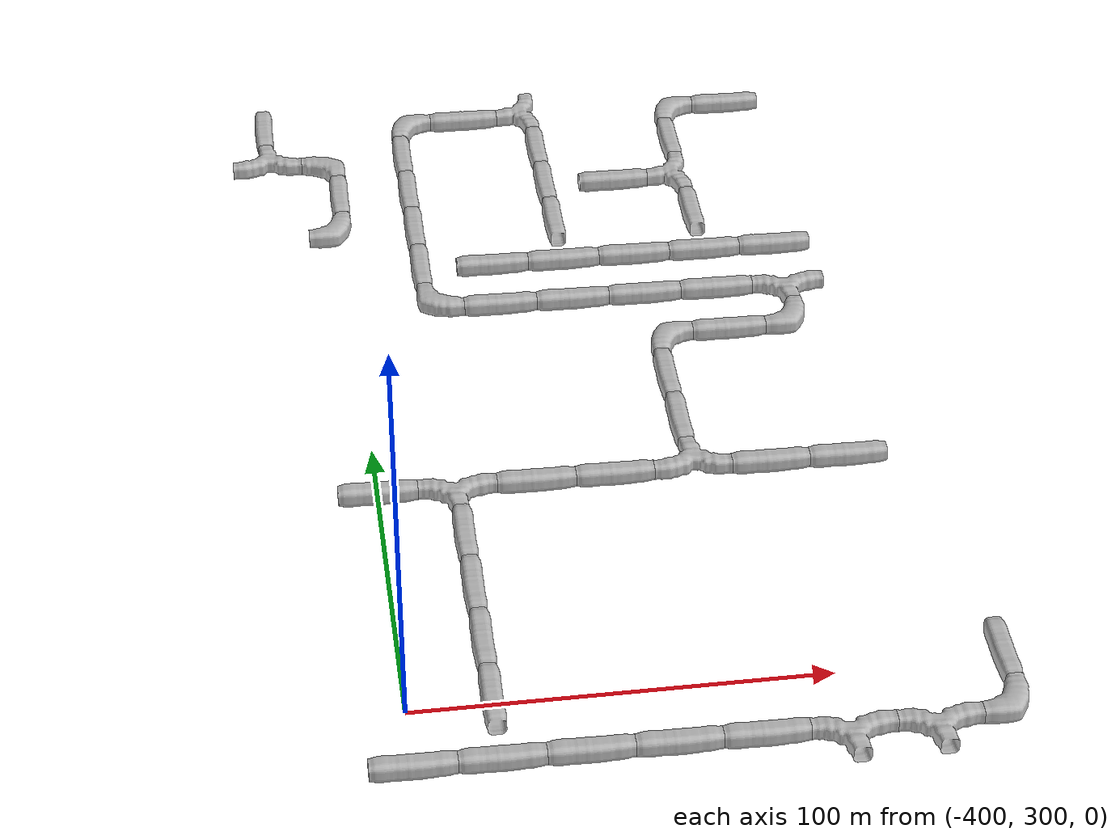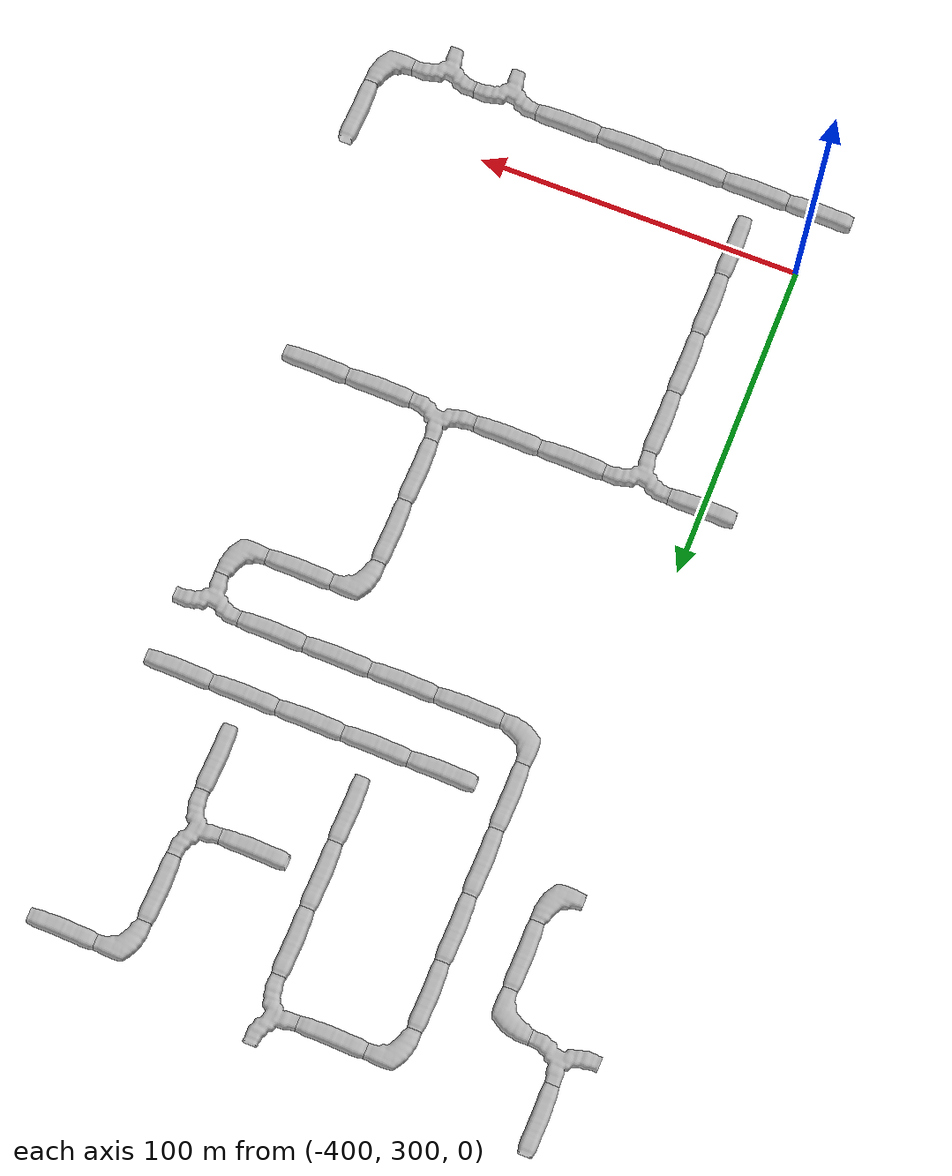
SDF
<sdf version="1.6">
 <world name="cave_32000_8">
  <include>
   <static>true</static>
   <name>cave_-14_14</name>
   <pose>-280 280 0 0 0 3.141592653589793</pose>
   <uri>model://cave_3way_20m</uri>
  </include>
  <include>
   <static>true</static>
   <name>cave_-13_14</name>
   <pose>-260 280 0 0 0 1.5707963267948966</pose>
   <uri>model://cave_L_20m</uri>
  </include>
  <include>
   <static>true</static>
   <name>cave_-13_15</name>
   <pose>-260 300 0 0 0 0.0</pose>
   <uri>model://cave_straight_20m</uri>
  </include>
  <include>
   <static>true</static>
   <name>cave_-14_23</name>
   <pose>-280 460 0 0 0 3.141592653589793</pose>
   <uri>model://cave_3way_20m</uri>
  </include>
  <include>
   <static>true</static>
   <name>cave_-14_22</name>
   <pose>-280 440 0 0 0 1.5707963267948966</pose>
   <uri>model://cave_L_20m</uri>
  </include>
  <include>
   <static>true</static>
   <name>cave_-15_22</name>
   <pose>-300 440 0 0 0 1.5707963267948966</pose>
   <uri>model://cave_straight_20m</uri>
  </include>
  <include>
   <static>true</static>
   <name>cave_-16_22</name>
   <pose>-320 440 0 0 0 -1.5707963267948966</pose>
   <uri>model://cave_L_20m</uri>
  </include>
  <include>
   <static>true</static>
   <name>cave_-16_21</name>
   <pose>-320 420 0 0 0 0.0</pose>
   <uri>model://cave_straight_20m</uri>
  </include>
  <include>
   <static>true</static>
   <name>cave_-16_20</name>
   <pose>-320 400 0 0 0 0.0</pose>
   <uri>model://cave_straight_20m</uri>
  </include>
  <include>
   <static>true</static>
   <name>cave_-16_19</name>
   <pose>-320 380 0 0 0 0.0</pose>
   <uri>model://cave_3way_20m</uri>
  </include>
  <include>
   <static>true</static>
   <name>cave_-15_19</name>
   <pose>-300 380 0 0 0 1.5707963267948966</pose>
   <uri>model://cave_straight_20m</uri>
  </include>
  <include>
   <static>true</static>
   <name>cave_-14_19</name>
   <pose>-280 380 0 0 0 1.5707963267948966</pose>
   <uri>model://cave_straight_20m</uri>
  </include>
  <include>
   <static>true</static>
   <name>cave_-17_19</name>
   <pose>-340 380 0 0 0 1.5707963267948966</pose>
   <uri>model://cave_straight_20m</uri>
  </include>
  <include>
   <static>true</static>
   <name>cave_-18_19</name>
   <pose>-360 380 0 0 0 1.5707963267948966</pose>
   <uri>model://cave_straight_20m</uri>
  </include>
  <include>
   <static>true</static>
   <name>cave_-19_19</name>
   <pose>-380 380 0 0 0 3.141592653589793</pose>
   <uri>model://cave_3way_20m</uri>
  </include>
  <include>
   <static>true</static>
   <name>cave_-19_18</name>
   <pose>-380 360 0 0 0 0.0</pose>
   <uri>model://cave_straight_20m</uri>
  </include>
  <include>
   <static>true</static>
   <name>cave_-19_17</name>
   <pose>-380 340 0 0 0 0.0</pose>
   <uri>model://cave_straight_20m</uri>
  </include>
  <include>
   <static>true</static>
   <name>cave_-19_16</name>
   <pose>-380 320 0 0 0 0.0</pose>
   <uri>model://cave_straight_20m</uri>
  </include>
  <include>
   <static>true</static>
   <name>cave_-19_15</name>
   <pose>-380 300 0 0 0 0.0</pose>
   <uri>model://cave_straight_20m</uri>
  </include>
  <include>
   <static>true</static>
   <name>cave_-20_19</name>
   <pose>-400 380 0 0 0 1.5707963267948966</pose>
   <uri>model://cave_straight_20m</uri>
  </include>
  <include>
   <static>true</static>
   <name>cave_-21_28</name>
   <pose>-420 560 0 0 0 0.0</pose>
   <uri>model://cave_straight_20m</uri>
  </include>
  <include>
   <static>true</static>
   <name>cave_-21_27</name>
   <pose>-420 540 0 0 0 0.0</pose>
   <uri>model://cave_3way_20m</uri>
  </include>
  <include>
   <static>true</static>
   <name>cave_-20_27</name>
   <pose>-400 540 0 0 0 3.141592653589793</pose>
   <uri>model://cave_L_20m</uri>
  </include>
  <include>
   <static>true</static>
   <name>cave_-20_26</name>
   <pose>-400 520 0 0 0 0.0</pose>
   <uri>model://cave_straight_20m</uri>
  </include>
  <include>
   <static>true</static>
   <name>cave_-20_25</name>
   <pose>-400 500 0 0 0 1.5707963267948966</pose>
   <uri>model://cave_L_20m</uri>
  </include>
  <include>
   <static>true</static>
   <name>cave_-15_23</name>
   <pose>-300 460 0 0 0 1.5707963267948966</pose>
   <uri>model://cave_straight_20m</uri>
  </include>
  <include>
   <static>true</static>
   <name>cave_-16_23</name>
   <pose>-320 460 0 0 0 1.5707963267948966</pose>
   <uri>model://cave_straight_20m</uri>
  </include>
  <include>
   <static>true</static>
   <name>cave_-17_23</name>
   <pose>-340 460 0 0 0 1.5707963267948966</pose>
   <uri>model://cave_straight_20m</uri>
  </include>
  <include>
   <static>true</static>
   <name>cave_-18_23</name>
   <pose>-360 460 0 0 0 1.5707963267948966</pose>
   <uri>model://cave_straight_20m</uri>
  </include>
  <include>
   <static>true</static>
   <name>cave_-19_23</name>
   <pose>-380 460 0 0 0 0.0</pose>
   <uri>model://cave_L_20m</uri>
  </include>
  <include>
   <static>true</static>
   <name>cave_-19_24</name>
   <pose>-380 480 0 0 0 0.0</pose>
   <uri>model://cave_straight_20m</uri>
  </include>
  <include>
   <static>true</static>
   <name>cave_-19_25</name>
   <pose>-380 500 0 0 0 0.0</pose>
   <uri>model://cave_straight_20m</uri>
  </include>
  <include>
   <static>true</static>
   <name>cave_-19_26</name>
   <pose>-380 520 0 0 0 0.0</pose>
   <uri>model://cave_straight_20m</uri>
  </include>
  <include>
   <static>true</static>
   <name>cave_-19_27</name>
   <pose>-380 540 0 0 0 0.0</pose>
   <uri>model://cave_straight_20m</uri>
  </include>
  <include>
   <static>true</static>
   <name>cave_-19_28</name>
   <pose>-380 560 0 0 0 -1.5707963267948966</pose>
   <uri>model://cave_L_20m</uri>
  </include>
  <include>
   <static>true</static>
   <name>cave_-18_28</name>
   <pose>-360 560 0 0 0 1.5707963267948966</pose>
   <uri>model://cave_straight_20m</uri>
  </include>
  <include>
   <static>true</static>
   <name>cave_-17_28</name>
   <pose>-340 560 0 0 0 1.5707963267948966</pose>
   <uri>model://cave_3way_20m</uri>
  </include>
  <include>
   <static>true</static>
   <name>cave_-17_27</name>
   <pose>-340 540 0 0 0 0.0</pose>
   <uri>model://cave_straight_20m</uri>
  </include>
  <include>
   <static>true</static>
   <name>cave_-17_26</name>
   <pose>-340 520 0 0 0 0.0</pose>
   <uri>model://cave_straight_20m</uri>
  </include>
  <include>
   <static>true</static>
   <name>cave_-17_25</name>
   <pose>-340 500 0 0 0 0.0</pose>
   <uri>model://cave_straight_20m</uri>
  </include>
  <include>
   <static>true</static>
   <name>cave_-14_24</name>
   <pose>-280 480 0 0 0 1.5707963267948966</pose>
   <uri>model://cave_straight_20m</uri>
  </include>
  <include>
   <static>true</static>
   <name>cave_-15_24</name>
   <pose>-300 480 0 0 0 1.5707963267948966</pose>
   <uri>model://cave_straight_20m</uri>
  </include>
  <include>
   <static>true</static>
   <name>cave_-16_24</name>
   <pose>-320 480 0 0 0 1.5707963267948966</pose>
   <uri>model://cave_straight_20m</uri>
  </include>
  <include>
   <static>true</static>
   <name>cave_-17_24</name>
   <pose>-340 480 0 0 0 1.5707963267948966</pose>
   <uri>model://cave_straight_20m</uri>
  </include>
  <include>
   <static>true</static>
   <name>cave_-18_24</name>
   <pose>-360 480 0 0 0 1.5707963267948966</pose>
   <uri>model://cave_straight_20m</uri>
  </include>
  <include>
   <static>true</static>
   <name>cave_-15_14</name>
   <pose>-300 280 0 0 0 3.141592653589793</pose>
   <uri>model://cave_3way_20m</uri>
  </include>
  <include>
   <static>true</static>
   <name>cave_-16_14</name>
   <pose>-320 280 0 0 0 1.5707963267948966</pose>
   <uri>model://cave_straight_20m</uri>
  </include>
  <include>
   <static>true</static>
   <name>cave_-17_14</name>
   <pose>-340 280 0 0 0 1.5707963267948966</pose>
   <uri>model://cave_straight_20m</uri>
  </include>
  <include>
   <static>true</static>
   <name>cave_-18_14</name>
   <pose>-360 280 0 0 0 1.5707963267948966</pose>
   <uri>model://cave_straight_20m</uri>
  </include>
  <include>
   <static>true</static>
   <name>cave_-19_14</name>
   <pose>-380 280 0 0 0 1.5707963267948966</pose>
   <uri>model://cave_straight_20m</uri>
  </include>
  <include>
   <static>true</static>
   <name>cave_-20_14</name>
   <pose>-400 280 0 0 0 1.5707963267948966</pose>
   <uri>model://cave_straight_20m</uri>
  </include>
  <include>
   <static>true</static>
   <name>cave_-14_28</name>
   <pose>-280 560 0 0 0 1.5707963267948966</pose>
   <uri>model://cave_straight_20m</uri>
  </include>
  <include>
   <static>true</static>
   <name>cave_-15_28</name>
   <pose>-300 560 0 0 0 -1.5707963267948966</pose>
   <uri>model://cave_L_20m</uri>
  </include>
  <include>
   <static>true</static>
   <name>cave_-15_27</name>
   <pose>-300 540 0 0 0 0.0</pose>
   <uri>model://cave_straight_20m</uri>
  </include>
  <include>
   <static>true</static>
   <name>cave_-15_26</name>
   <pose>-300 520 0 0 0 1.5707963267948966</pose>
   <uri>model://cave_3way_20m</uri>
  </include>
  <include>
   <static>true</static>
   <name>cave_-15_25</name>
   <pose>-300 500 0 0 0 0.0</pose>
   <uri>model://cave_straight_20m</uri>
  </include>
  <include>
   <static>true</static>
   <name>cave_-16_26</name>
   <pose>-320 520 0 0 0 1.5707963267948966</pose>
   <uri>model://cave_straight_20m</uri>
  </include>
 </world>
</sdf>
